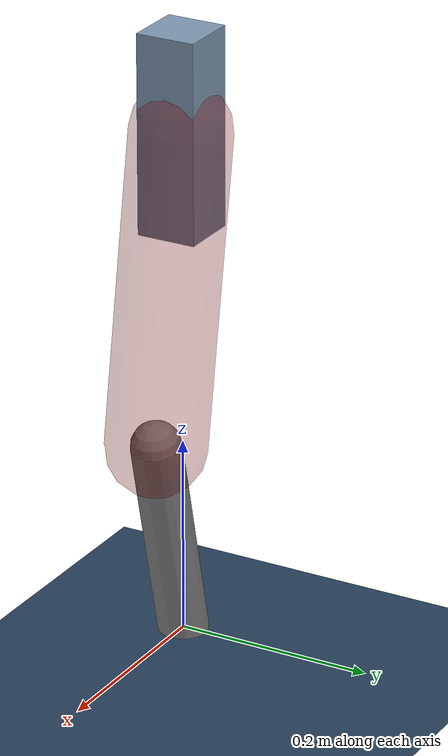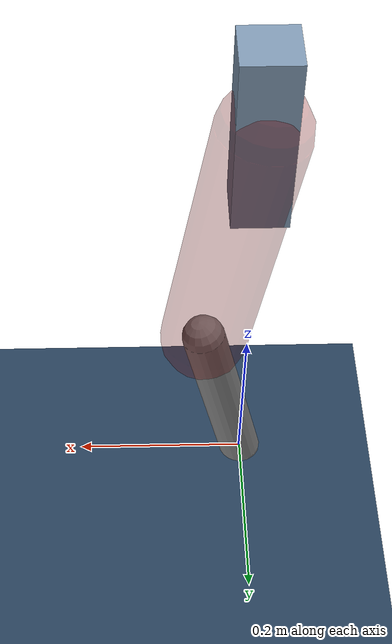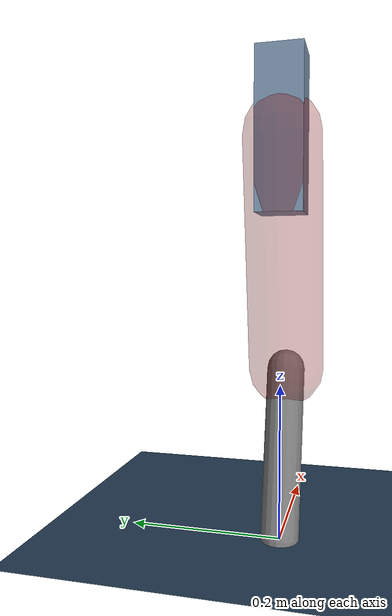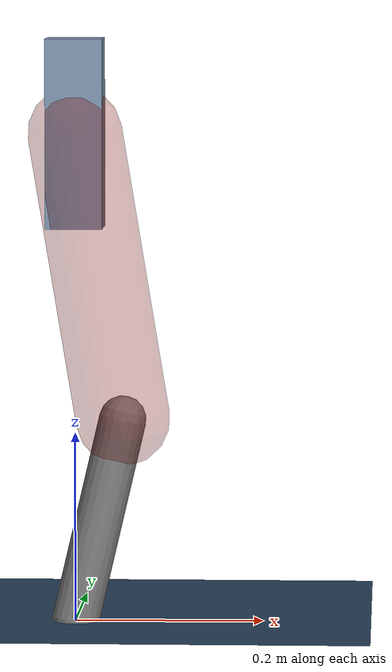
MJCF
<mujoco model="Hopper2D">
	<compiler inertiafromgeom="true" angle="radian" />
	<option timestep="0.001" integrator="implicit" cone="elliptic" solver="Newton" tolerance="1e-10" />

	<default>
		<geom contype="1" conaffinity="1" condim="3" friction="2 0.005 0.0001" solref="0.005 1" />
		<joint limited="true" damping="0.1" />
	</default>

	<asset>
		<texture name="skybox" type="skybox" builtin="gradient" rgb1=".4 .6 .8" rgb2="0 0 0" width="800" height="800" />
		<texture name="grid" type="2d" builtin="checker" rgb1=".1 .2 .3" rgb2=".2 .3 .4" width="300" height="300" mark="edge" markrgb=".2 .3 .4" />
		<material name="ground" texture="grid" texrepeat="1 1" texuniform="true" reflectance="0.1" />
		<material name="leg" rgba="0.5 0.6 0.7 1" />
	</asset>

	<worldbody>

		<geom name="floor" type="plane" size="5 5 0.25" material="ground" />

		<light directional="false" diffuse="0.8 0.8 0.8" specular="0.3 0.3 0.3" pos="0 0 2" dir="0 0 -1" />
		<light mode="targetbodycom" target="base" directional="false" diffuse="0.8 0.8 0.8" specular="0.3 0.3 0.3" pos="0 0 2" dir="0 0 -1" />

		<camera name="fixed" pos="0 -2 1" xyaxes="1 0 0 0 0 1" />
		<camera name="tracking" mode="trackcom" pos="0 -3 1" />

		<body name="root" pos="0 0 0.518164628209576">
			<joint name="slide_x" type="slide" axis="1 0 0" range="-100 100" />
			<joint name="slide_z" type="slide" axis="0 0 1" range="0 10" />

			<body name="base" pos="0 0 0">
				<geom name="torso" type="box" size="0.03 0.03 0.1" mass="2.085" material="leg" />

				<body name="link1" pos="0 0 0" euler="0 1.4058392641711002 0">
					<joint type="hinge" axis="0 -1 0" pos="0 0 0" name="hinge1" limited="true" range="-3.14 3.14" stiffness="0" damping="0.1" />
					<geom name="thigh" type="capsule" fromto="0 0 0 0.30713191269736 0 0" size="0.05" rgba="0.5 0 0 0.3" mass="1.008056164282872" />

					<body name="link2" pos="0.30713191269736 0 0" euler="0 0.39515981206015977 0">
						<joint type="hinge" axis="0 -1 0" pos="0 0 0" name="hinge2" limited="true" range="-3.14 3.14" stiffness="0" damping="0.1" />
						<geom name="shank" type="capsule" fromto="0 0 0 0.22103271551221604 0 0" size="0.025" mass="0.4185261724097728" />

					</body>
				</body>
			</body>
		</body>
	</worldbody>

	<actuator>
		<motor name="torque1" joint="hinge1" ctrlrange="-34.79282754404784 34.79282754404784" ctrllimited="true" gear="1" />
		<motor name="torque2" joint="hinge2" ctrlrange="-96.44062804216207 96.44062804216207" ctrllimited="true" gear="1" />
	</actuator>
</mujoco>
